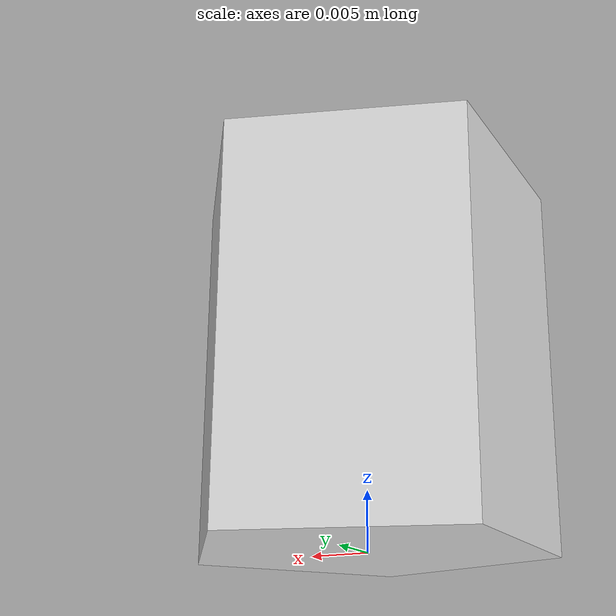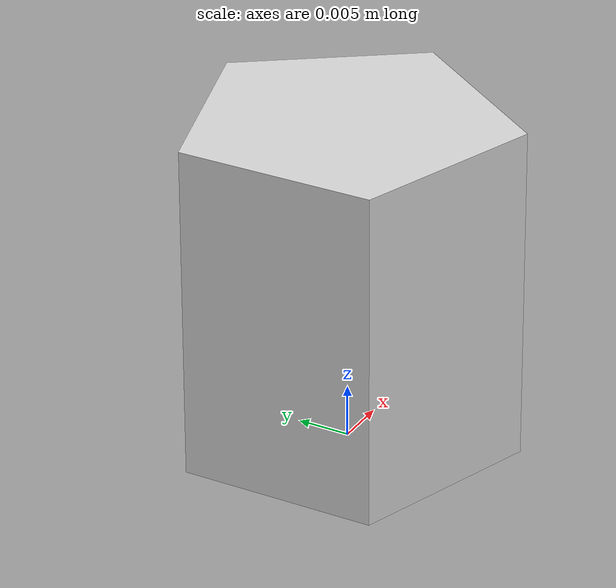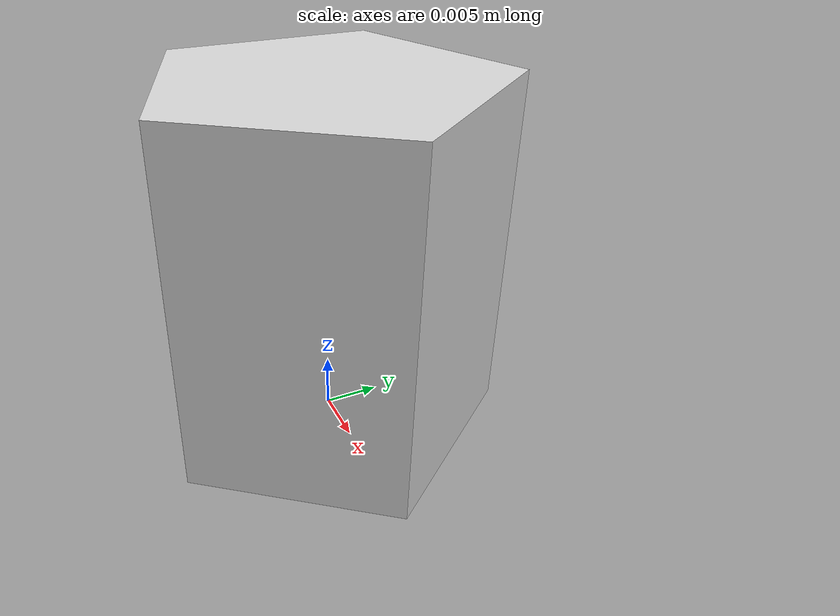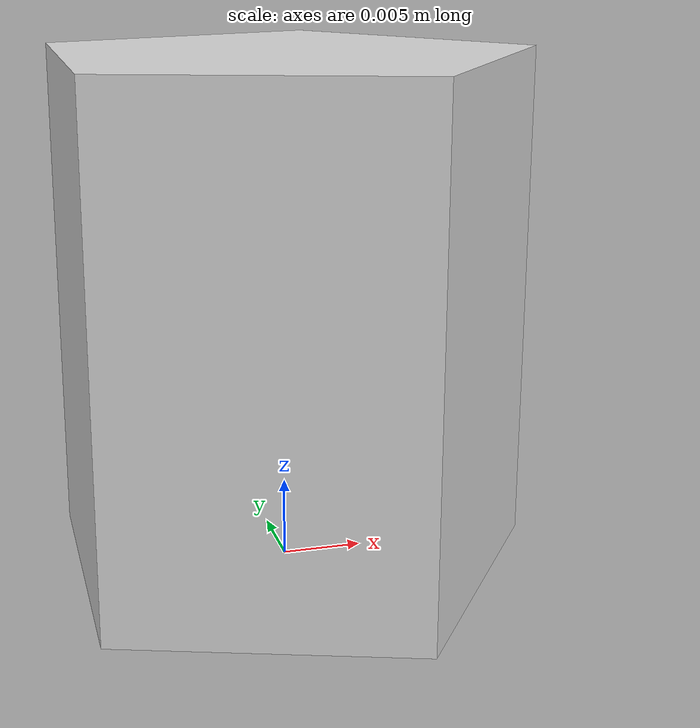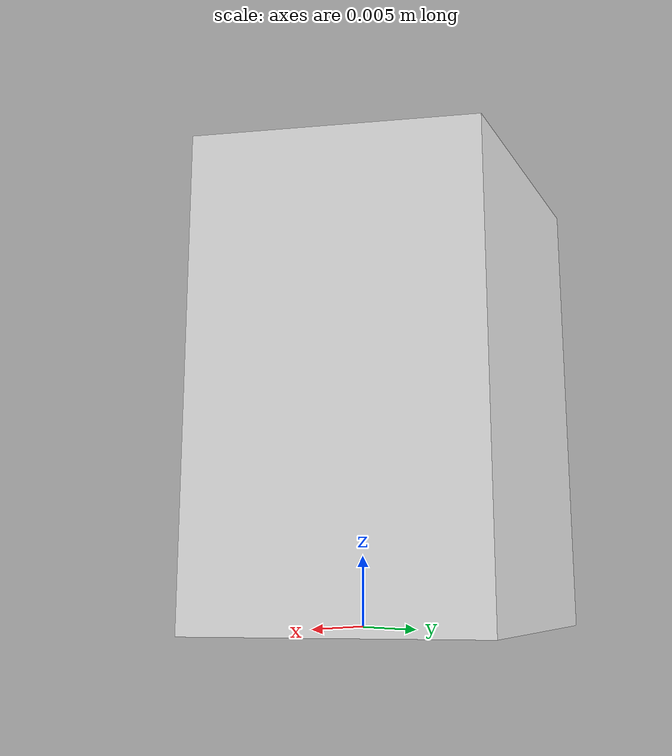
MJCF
<mujoco model="white_pent_cylinder">
  <compiler angle="radian" meshdir="assets" autolimits="true" />
  <option cone="elliptic" impratio="10" />
  <default>
    <default class="white_pent_cylinder">
      <default class="visual">
        <geom group="2" contype="0" conaffinity="0" />
      </default>
      <default class="collision">
        <geom group="3" condim="3" margin="0.001" />
      </default>
    </default>
  </default>
  <asset>
    <mesh name="white_pent_cylinder" file="pent_cylinder.obj"   />
  </asset>
  <worldbody>
    <body name="white_pent_cylinder_body" childclass="white_pent_cylinder">
      <geom type="mesh" class="visual" name="white_pent_cylinder_visual_geom" mesh="white_pent_cylinder" rgba="0.85 0.85 0.85 1" />
      <geom type="mesh" class="collision" name="white_pent_cylinder_collision_geom" mesh="white_pent_cylinder" friction="1.2 1.5 0.8" density="20" solimp="0.90 0.95" solref="0.004 1" />
      <joint type="free" name="white_pent_cylinder_joint" />
    </body>
  </worldbody>
</mujoco>
